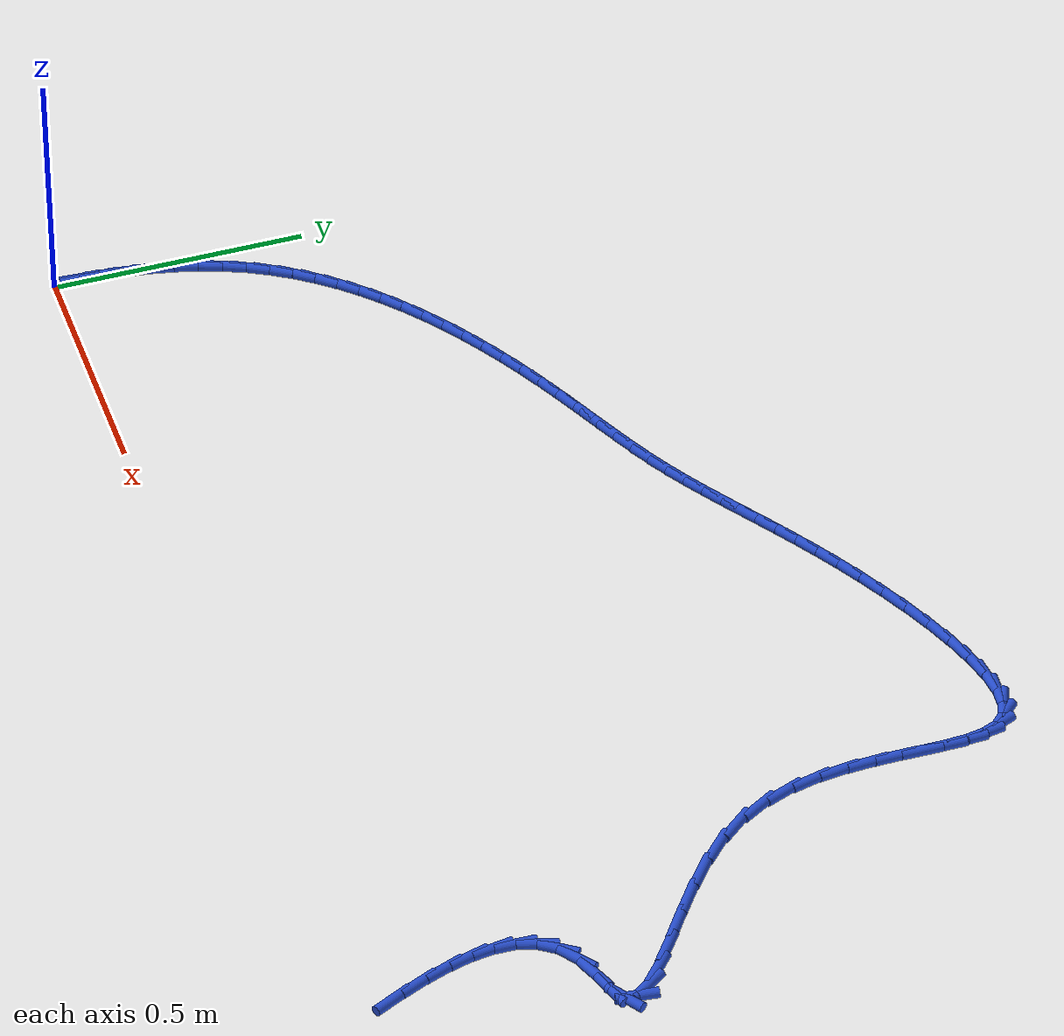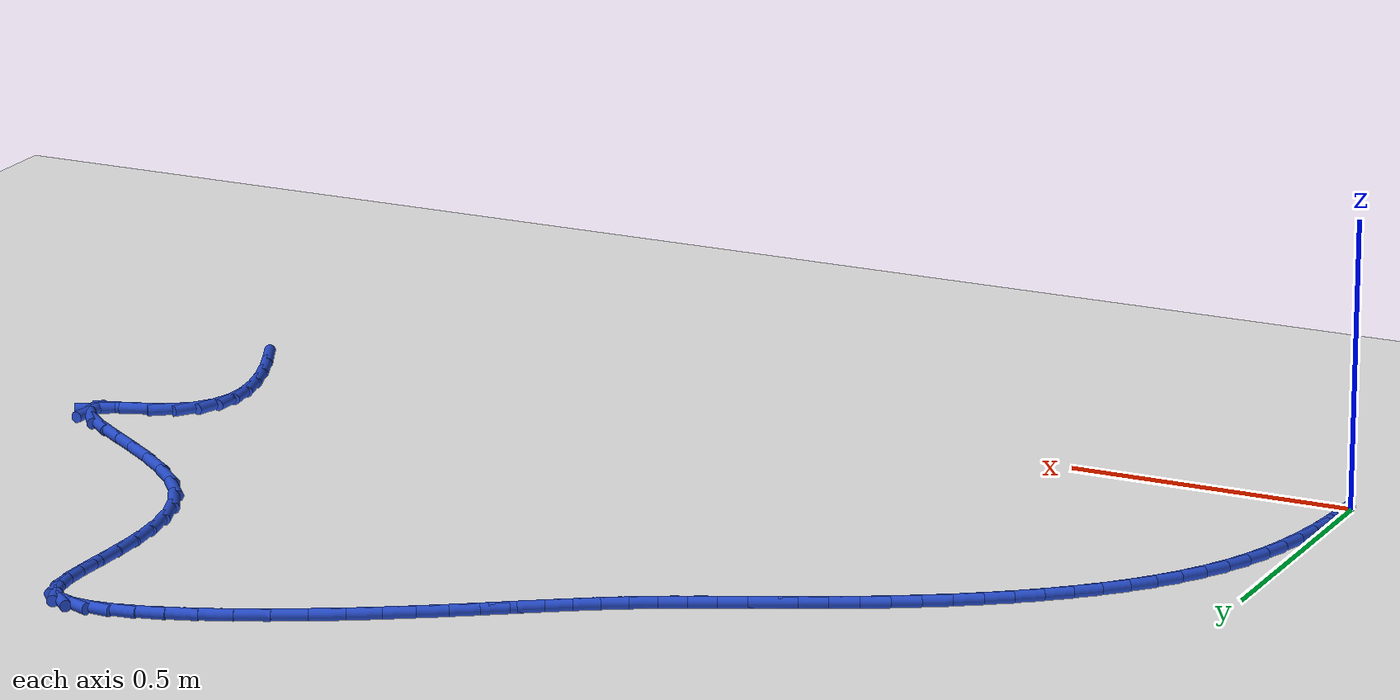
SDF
<sdf version="1.6">
 <world name="default">
  <model name="ground_plane">
   <static>1</static>
   <link name="link">
    <collision name="collision">
     <geometry><plane><normal>0 0 1</normal><size>100 100</size></plane></geometry>
     <surface><friction><ode><mu>100</mu><mu2>50</mu2></ode></friction></surface>
    </collision>
    <visual name="visual">
     <cast_shadows>0</cast_shadows>
     <geometry><plane><normal>0 0 1</normal><size>100 100</size></plane></geometry>
     <material>
      <script><uri>file://media/materials/scripts/gazebo.material</uri><name>Gazebo/WhiteGlow</name></script>
     </material>
    </visual>
   </link>
  </model>
  <model name="line">
   <link name="link_1">
    <pose>0.0007842515850210458 0.04907750059657804 0.01 0 1.57 1.5136349057976526</pose>
    <collision name="collision">
     <geometry><cylinder><radius>0.01</radius><length>0.08</length></cylinder></geometry>
    </collision>
    <visual name="visual">
     <material>
      <script><name>Gazebo/Blue</name><uri>file://media/materials/scripts/gazebo.material</uri></script>
     </material>
     <geometry><cylinder><radius>0.01</radius><length>0.08</length></cylinder></geometry>
    </visual>
   </link>
   <link name="link_2">
    <pose>0.003576023252500154 0.09786443273712372 0.01 0 1.57 1.468387888100045</pose>
    <collision name="collision">
     <geometry><cylinder><radius>0.01</radius><length>0.08</length></cylinder></geometry>
    </collision>
    <visual name="visual">
     <material>
      <script><name>Gazebo/Blue</name><uri>file://media/materials/scripts/gazebo.material</uri></script>
     </material>
     <geometry><cylinder><radius>0.01</radius><length>0.08</length></cylinder></geometry>
    </visual>
   </link>
   <link name="link_3">
    <pose>0.008539704421732526 0.14616432779783262 0.01 0 1.57 1.4186726149800124</pose>
    <collision name="collision">
     <geometry><cylinder><radius>0.01</radius><length>0.08</length></cylinder></geometry>
    </collision>
    <visual name="visual">
     <material>
      <script><name>Gazebo/Blue</name><uri>file://media/materials/scripts/gazebo.material</uri></script>
     </material>
     <geometry><cylinder><radius>0.01</radius><length>0.08</length></cylinder></geometry>
    </visual>
   </link>
   <link name="link_4">
    <pose>0.015839684512013324 0.19378071715490022 0.01 0 1.57 1.3640906138248614</pose>
    <collision name="collision">
     <geometry><cylinder><radius>0.01</radius><length>0.08</length></cylinder></geometry>
    </collision>
    <visual name="visual">
     <material>
      <script><name>Gazebo/Blue</name><uri>file://media/materials/scripts/gazebo.material</uri></script>
     </material>
     <geometry><cylinder><radius>0.01</radius><length>0.08</length></cylinder></geometry>
    </visual>
   </link>
   <link name="link_5">
    <pose>0.02564035294263773 0.240517132184522 0.01 0 1.57 1.30427875366741</pose>
    <collision name="collision">
     <geometry><cylinder><radius>0.01</radius><length>0.08</length></cylinder></geometry>
    </collision>
    <visual name="visual">
     <material>
      <script><name>Gazebo/Blue</name><uri>file://media/materials/scripts/gazebo.material</uri></script>
     </material>
     <geometry><cylinder><radius>0.01</radius><length>0.08</length></cylinder></geometry>
    </visual>
   </link>
   <link name="link_6">
    <pose>0.03810609913290093 0.2861771042628936 0.01 0 1.57 1.2389517060004942</pose>
    <collision name="collision">
     <geometry><cylinder><radius>0.01</radius><length>0.08</length></cylinder></geometry>
    </collision>
    <visual name="visual">
     <material>
      <script><name>Gazebo/Blue</name><uri>file://media/materials/scripts/gazebo.material</uri></script>
     </material>
     <geometry><cylinder><radius>0.01</radius><length>0.08</length></cylinder></geometry>
    </visual>
   </link>
   <link name="link_7">
    <pose>0.05340131250209809 0.33056416476621037 0.01 0 1.57 1.1679579282214492</pose>
    <collision name="collision">
     <geometry><cylinder><radius>0.01</radius><length>0.08</length></cylinder></geometry>
    </collision>
    <visual name="visual">
     <material>
      <script><name>Gazebo/Blue</name><uri>file://media/materials/scripts/gazebo.material</uri></script>
     </material>
     <geometry><cylinder><radius>0.01</radius><length>0.08</length></cylinder></geometry>
    </visual>
   </link>
   <link name="link_8">
    <pose>0.07169038246952437 0.37348184507066806 0.01 0 1.57 1.0921105278431147</pose>
    <collision name="collision">
     <geometry><cylinder><radius>0.01</radius><length>0.08</length></cylinder></geometry>
    </collision>
    <visual name="visual">
     <material>
      <script><name>Gazebo/Blue</name><uri>file://media/materials/scripts/gazebo.material</uri></script>
     </material>
     <geometry><cylinder><radius>0.01</radius><length>0.08</length></cylinder></geometry>
    </visual>
   </link>
   <link name="link_9">
    <pose>0.09310748259988162 0.4147525787857607 0.01 0 1.57 1.0177618828842996</pose>
    <collision name="collision">
     <geometry><cylinder><radius>0.01</radius><length>0.08</length></cylinder></geometry>
    </collision>
    <visual name="visual">
     <material>
      <script><name>Gazebo/Blue</name><uri>file://media/materials/scripts/gazebo.material</uri></script>
     </material>
     <geometry><cylinder><radius>0.01</radius><length>0.08</length></cylinder></geometry>
    </visual>
   </link>
   <link name="link_10">
    <pose>0.1175489916067212 0.4543475576419809 0.01 0 1.57 0.948197487847134</pose>
    <collision name="collision">
     <geometry><cylinder><radius>0.01</radius><length>0.08</length></cylinder></geometry>
    </collision>
    <visual name="visual">
     <material>
      <script><name>Gazebo/Blue</name><uri>file://media/materials/scripts/gazebo.material</uri></script>
     </material>
     <geometry><cylinder><radius>0.01</radius><length>0.08</length></cylinder></geometry>
    </visual>
   </link>
   <link name="link_11">
    <pose>0.14479876541814232 0.49230836462536093 0.01 0 1.57 0.8836673601684549</pose>
    <collision name="collision">
     <geometry><cylinder><radius>0.01</radius><length>0.08</length></cylinder></geometry>
    </collision>
    <visual name="visual">
     <material>
      <script><name>Gazebo/Blue</name><uri>file://media/materials/scripts/gazebo.material</uri></script>
     </material>
     <geometry><cylinder><radius>0.01</radius><length>0.08</length></cylinder></geometry>
    </visual>
   </link>
   <link name="link_12">
    <pose>0.17463998865264915 0.5286770026753236 0.01 0 1.57 0.8242037764306432</pose>
    <collision name="collision">
     <geometry><cylinder><radius>0.01</radius><length>0.08</length></cylinder></geometry>
    </collision>
    <visual name="visual">
     <material>
      <script><name>Gazebo/Blue</name><uri>file://media/materials/scripts/gazebo.material</uri></script>
     </material>
     <geometry><cylinder><radius>0.01</radius><length>0.08</length></cylinder></geometry>
    </visual>
   </link>
   <link name="link_13">
    <pose>0.20685584592874584 0.5634954747312914 0.01 0 1.57 0.7696886944714623</pose>
    <collision name="collision">
     <geometry><cylinder><radius>0.01</radius><length>0.08</length></cylinder></geometry>
    </collision>
    <visual name="visual">
     <material>
      <script><name>Gazebo/Blue</name><uri>file://media/materials/scripts/gazebo.material</uri></script>
     </material>
     <geometry><cylinder><radius>0.01</radius><length>0.08</length></cylinder></geometry>
    </visual>
   </link>
   <link name="link_14">
    <pose>0.2412295218649367 0.5968057837326871 0.01 0 1.57 0.7199020837492931</pose>
    <collision name="collision">
     <geometry><cylinder><radius>0.01</radius><length>0.08</length></cylinder></geometry>
    </collision>
    <visual name="visual">
     <material>
      <script><name>Gazebo/Blue</name><uri>file://media/materials/scripts/gazebo.material</uri></script>
     </material>
     <geometry><cylinder><radius>0.01</radius><length>0.08</length></cylinder></geometry>
    </visual>
   </link>
   <link name="link_15">
    <pose>0.2775442010797258 0.6286499326189332 0.01 0 1.57 0.6745629541881316</pose>
    <collision name="collision">
     <geometry><cylinder><radius>0.01</radius><length>0.08</length></cylinder></geometry>
    </collision>
    <visual name="visual">
     <material>
      <script><name>Gazebo/Blue</name><uri>file://media/materials/scripts/gazebo.material</uri></script>
     </material>
     <geometry><cylinder><radius>0.01</radius><length>0.08</length></cylinder></geometry>
    </visual>
   </link>
   <link name="link_16">
    <pose>0.3155830681916175 0.6590699243294528 0.01 0 1.57 0.6333612831008195</pose>
    <collision name="collision">
     <geometry><cylinder><radius>0.01</radius><length>0.08</length></cylinder></geometry>
    </collision>
    <visual name="visual">
     <material>
      <script><name>Gazebo/Blue</name><uri>file://media/materials/scripts/gazebo.material</uri></script>
     </material>
     <geometry><cylinder><radius>0.01</radius><length>0.08</length></cylinder></geometry>
    </visual>
   </link>
   <link name="link_17">
    <pose>0.3551293078191161 0.6881077618036684 0.01 0 1.57 0.5959811809001965</pose>
    <collision name="collision">
     <geometry><cylinder><radius>0.01</radius><length>0.08</length></cylinder></geometry>
    </collision>
    <visual name="visual">
     <material>
      <script><name>Gazebo/Blue</name><uri>file://media/materials/scripts/gazebo.material</uri></script>
     </material>
     <geometry><cylinder><radius>0.01</radius><length>0.08</length></cylinder></geometry>
    </visual>
   </link>
   <link name="link_18">
    <pose>0.39596610458072545 0.7158054479810023 0.01 0 1.57 0.5621166843402141</pose>
    <collision name="collision">
     <geometry><cylinder><radius>0.01</radius><length>0.08</length></cylinder></geometry>
    </collision>
    <visual name="visual">
     <material>
      <script><name>Gazebo/Blue</name><uri>file://media/materials/scripts/gazebo.material</uri></script>
     </material>
     <geometry><cylinder><radius>0.01</radius><length>0.08</length></cylinder></geometry>
    </visual>
   </link>
   <link name="link_19">
    <pose>0.43787664309495017 0.7422049858008779 0.01 0 1.57 0.5314818775183597</pose>
    <collision name="collision">
     <geometry><cylinder><radius>0.01</radius><length>0.08</length></cylinder></geometry>
    </collision>
    <visual name="visual">
     <material>
      <script><name>Gazebo/Blue</name><uri>file://media/materials/scripts/gazebo.material</uri></script>
     </material>
     <geometry><cylinder><radius>0.01</radius><length>0.08</length></cylinder></geometry>
    </visual>
   </link>
   <link name="link_20">
    <pose>0.480644107980294 0.7673483782027171 0.01 0 1.57 0.5038169510047724</pose>
    <collision name="collision">
     <geometry><cylinder><radius>0.01</radius><length>0.08</length></cylinder></geometry>
    </collision>
    <visual name="visual">
     <material>
      <script><name>Gazebo/Blue</name><uri>file://media/materials/scripts/gazebo.material</uri></script>
     </material>
     <geometry><cylinder><radius>0.01</radius><length>0.08</length></cylinder></geometry>
    </visual>
   </link>
   <link name="link_21">
    <pose>0.5240516838552616 0.791277628125943 0.01 0 1.57 0.4788915536792407</pose>
    <collision name="collision">
     <geometry><cylinder><radius>0.01</radius><length>0.08</length></cylinder></geometry>
    </collision>
    <visual name="visual">
     <material>
      <script><name>Gazebo/Blue</name><uri>file://media/materials/scripts/gazebo.material</uri></script>
     </material>
     <geometry><cylinder><radius>0.01</radius><length>0.08</length></cylinder></geometry>
    </visual>
   </link>
   <link name="link_22">
    <pose>0.5678825553383569 0.8140347385099787 0.01 0 1.57 0.4570493568227514</pose>
    <collision name="collision">
     <geometry><cylinder><radius>0.01</radius><length>0.08</length></cylinder></geometry>
    </collision>
    <visual name="visual">
     <material>
      <script><name>Gazebo/Blue</name><uri>file://media/materials/scripts/gazebo.material</uri></script>
     </material>
     <geometry><cylinder><radius>0.01</radius><length>0.08</length></cylinder></geometry>
    </visual>
   </link>
   <link name="link_23">
    <pose>0.6119143527583014 0.8356886600461111 0.01 0 1.57 0.4420971581341277</pose>
    <collision name="collision">
     <geometry><cylinder><radius>0.01</radius><length>0.08</length></cylinder></geometry>
    </collision>
    <visual name="visual">
     <material>
      <script><name>Gazebo/Blue</name><uri>file://media/materials/scripts/gazebo.material</uri></script>
     </material>
     <geometry><cylinder><radius>0.01</radius><length>0.08</length></cylinder></geometry>
    </visual>
   </link>
   <link name="link_24">
    <pose>0.6558848197423763 0.856501861764612 0.01 0 1.57 0.43585741994843274</pose>
    <collision name="collision">
     <geometry><cylinder><radius>0.01</radius><length>0.08</length></cylinder></geometry>
    </collision>
    <visual name="visual">
     <material>
      <script><name>Gazebo/Blue</name><uri>file://media/materials/scripts/gazebo.material</uri></script>
     </material>
     <geometry><cylinder><radius>0.01</radius><length>0.08</length></cylinder></geometry>
    </visual>
   </link>
   <link name="link_25">
    <pose>0.6995142677260668 0.8768213884736384 0.01 0 1.57 0.43858317244320516</pose>
    <collision name="collision">
     <geometry><cylinder><radius>0.01</radius><length>0.08</length></cylinder></geometry>
    </collision>
    <visual name="visual">
     <material>
      <script><name>Gazebo/Blue</name><uri>file://media/materials/scripts/gazebo.material</uri></script>
     </material>
     <geometry><cylinder><radius>0.01</radius><length>0.08</length></cylinder></geometry>
    </visual>
   </link>
   <link name="link_26">
    <pose>0.7425229350188614 0.8969946397668027 0.01 0 1.57 0.4506512488615498</pose>
    <collision name="collision">
     <geometry><cylinder><radius>0.01</radius><length>0.08</length></cylinder></geometry>
    </collision>
    <visual name="visual">
     <material>
      <script><name>Gazebo/Blue</name><uri>file://media/materials/scripts/gazebo.material</uri></script>
     </material>
     <geometry><cylinder><radius>0.01</radius><length>0.08</length></cylinder></geometry>
    </visual>
   </link>
   <link name="link_27">
    <pose>0.7846310599302466 0.9173690152377156 0.01 0 1.57 0.4725789795757197</pose>
    <collision name="collision">
     <geometry><cylinder><radius>0.01</radius><length>0.08</length></cylinder></geometry>
    </collision>
    <visual name="visual">
     <material>
      <script><name>Gazebo/Blue</name><uri>file://media/materials/scripts/gazebo.material</uri></script>
     </material>
     <geometry><cylinder><radius>0.01</radius><length>0.08</length></cylinder></geometry>
    </visual>
   </link>
   <link name="link_28">
    <pose>0.8255588807697106 0.9382919144799886 0.01 0 1.57 0.5044726837128017</pose>
    <collision name="collision">
     <geometry><cylinder><radius>0.01</radius><length>0.08</length></cylinder></geometry>
    </collision>
    <visual name="visual">
     <material>
      <script><name>Gazebo/Blue</name><uri>file://media/materials/scripts/gazebo.material</uri></script>
     </material>
     <geometry><cylinder><radius>0.01</radius><length>0.08</length></cylinder></geometry>
    </visual>
   </link>
   <link name="link_29">
    <pose>0.8650518140848992 0.9600969224044723 0.01 0 1.57 0.5377605878193324</pose>
    <collision name="collision">
     <geometry><cylinder><radius>0.01</radius><length>0.08</length></cylinder></geometry>
    </collision>
    <visual name="visual">
     <material>
      <script><name>Gazebo/Blue</name><uri>file://media/materials/scripts/gazebo.material</uri></script>
     </material>
     <geometry><cylinder><radius>0.01</radius><length>0.08</length></cylinder></geometry>
    </visual>
   </link>
   <link name="link_30">
    <pose>0.9032701948146044 0.9828899683605195 0.01 0 1.57 0.5642962442708688</pose>
    <collision name="collision">
     <geometry><cylinder><radius>0.01</radius><length>0.08</length></cylinder></geometry>
    </collision>
    <visual name="visual">
     <material>
      <script><name>Gazebo/Blue</name><uri>file://media/materials/scripts/gazebo.material</uri></script>
     </material>
     <geometry><cylinder><radius>0.01</radius><length>0.08</length></cylinder></geometry>
    </visual>
   </link>
   <link name="link_31">
    <pose>0.9407144890048875 1.0065903600874022 0.01 0 1.57 0.5830407878742155</pose>
    <collision name="collision">
     <geometry><cylinder><radius>0.01</radius><length>0.08</length></cylinder></geometry>
    </collision>
    <visual name="visual">
     <material>
      <script><name>Gazebo/Blue</name><uri>file://media/materials/scripts/gazebo.material</uri></script>
     </material>
     <geometry><cylinder><radius>0.01</radius><length>0.08</length></cylinder></geometry>
    </visual>
   </link>
   <link name="link_32">
    <pose>0.9778951980221898 1.0311118991898245 0.01 0 1.57 0.5936182516509998</pose>
    <collision name="collision">
     <geometry><cylinder><radius>0.01</radius><length>0.08</length></cylinder></geometry>
    </collision>
    <visual name="visual">
     <material>
      <script><name>Gazebo/Blue</name><uri>file://media/materials/scripts/gazebo.material</uri></script>
     </material>
     <geometry><cylinder><radius>0.01</radius><length>0.08</length></cylinder></geometry>
    </visual>
   </link>
   <link name="link_33">
    <pose>1.0153228232329512 1.0563683872724916 0.01 0 1.57 0.5960908205367755</pose>
    <collision name="collision">
     <geometry><cylinder><radius>0.01</radius><length>0.08</length></cylinder></geometry>
    </collision>
    <visual name="visual">
     <material>
      <script><name>Gazebo/Blue</name><uri>file://media/materials/scripts/gazebo.material</uri></script>
     </material>
     <geometry><cylinder><radius>0.01</radius><length>0.08</length></cylinder></geometry>
    </visual>
   </link>
   <link name="link_34">
    <pose>1.0535078660036135 1.0822736259401078 0.01 0 1.57 0.5909066540324872</pose>
    <collision name="collision">
     <geometry><cylinder><radius>0.01</radius><length>0.08</length></cylinder></geometry>
    </collision>
    <visual name="visual">
     <material>
      <script><name>Gazebo/Blue</name><uri>file://media/materials/scripts/gazebo.material</uri></script>
     </material>
     <geometry><cylinder><radius>0.01</radius><length>0.08</length></cylinder></geometry>
    </visual>
   </link>
   <link name="link_35">
    <pose>1.0929608277006175 1.108741416797379 0.01 0 1.57 0.5788221673163818</pose>
    <collision name="collision">
     <geometry><cylinder><radius>0.01</radius><length>0.08</length></cylinder></geometry>
    </collision>
    <visual name="visual">
     <material>
      <script><name>Gazebo/Blue</name><uri>file://media/materials/scripts/gazebo.material</uri></script>
     </material>
     <geometry><cylinder><radius>0.01</radius><length>0.08</length></cylinder></geometry>
    </visual>
   </link>
   <link name="link_36">
    <pose>1.1341922096904038 1.1356855614490087 0.01 0 1.57 0.5608121976195135</pose>
    <collision name="collision">
     <geometry><cylinder><radius>0.01</radius><length>0.08</length></cylinder></geometry>
    </collision>
    <visual name="visual">
     <material>
      <script><name>Gazebo/Blue</name><uri>file://media/materials/scripts/gazebo.material</uri></script>
     </material>
     <geometry><cylinder><radius>0.01</radius><length>0.08</length></cylinder></geometry>
    </visual>
   </link>
   <link name="link_37">
    <pose>1.1777125133394137 1.163019861499702 0.01 0 1.57 0.5379779724539197</pose>
    <collision name="collision">
     <geometry><cylinder><radius>0.01</radius><length>0.08</length></cylinder></geometry>
    </collision>
    <visual name="visual">
     <material>
      <script><name>Gazebo/Blue</name><uri>file://media/materials/scripts/gazebo.material</uri></script>
     </material>
     <geometry><cylinder><radius>0.01</radius><length>0.08</length></cylinder></geometry>
    </visual>
   </link>
   <link name="link_38">
    <pose>1.224032240014088 1.190658118554164 0.01 0 1.57 0.511590260849804</pose>
    <collision name="collision">
     <geometry><cylinder><radius>0.01</radius><length>0.08</length></cylinder></geometry>
    </collision>
    <visual name="visual">
     <material>
      <script><name>Gazebo/Blue</name><uri>file://media/materials/scripts/gazebo.material</uri></script>
     </material>
     <geometry><cylinder><radius>0.01</radius><length>0.08</length></cylinder></geometry>
    </visual>
   </link>
   <link name="link_39">
    <pose>1.2735407798031957 1.2184546090722577 0.01 0 1.57 0.4830601614089095</pose>
    <collision name="collision">
     <geometry><cylinder><radius>0.01</radius><length>0.08</length></cylinder></geometry>
    </collision>
    <visual name="visual">
     <material>
      <script><name>Gazebo/Blue</name><uri>file://media/materials/scripts/gazebo.material</uri></script>
     </material>
     <geometry><cylinder><radius>0.01</radius><length>0.08</length></cylinder></geometry>
    </visual>
   </link>
   <link name="link_40">
    <pose>1.325556849074618 1.2457373826459686 0.01 0 1.57 0.45127121917177127</pose>
    <collision name="collision">
     <geometry><cylinder><radius>0.01</radius><length>0.08</length></cylinder></geometry>
    </collision>
    <visual name="visual">
     <material>
      <script><name>Gazebo/Blue</name><uri>file://media/materials/scripts/gazebo.material</uri></script>
     </material>
     <geometry><cylinder><radius>0.01</radius><length>0.08</length></cylinder></geometry>
    </visual>
   </link>
   <link name="link_41">
    <pose>1.3788407832566785 1.27156004946789 0.01 0 1.57 0.41385574941185355</pose>
    <collision name="collision">
     <geometry><cylinder><radius>0.01</radius><length>0.08</length></cylinder></geometry>
    </collision>
    <visual name="visual">
     <material>
      <script><name>Gazebo/Blue</name><uri>file://media/materials/scripts/gazebo.material</uri></script>
     </material>
     <geometry><cylinder><radius>0.01</radius><length>0.08</length></cylinder></geometry>
    </visual>
   </link>
   <link name="link_42">
    <pose>1.43214808698638 1.2949738454384878 0.01 0 1.57 0.3675587106381804</pose>
    <collision name="collision">
     <geometry><cylinder><radius>0.01</radius><length>0.08</length></cylinder></geometry>
    </collision>
    <visual name="visual">
     <material>
      <script><name>Gazebo/Blue</name><uri>file://media/materials/scripts/gazebo.material</uri></script>
     </material>
     <geometry><cylinder><radius>0.01</radius><length>0.08</length></cylinder></geometry>
    </visual>
   </link>
   <link name="link_43">
    <pose>1.484234264900728 1.3150300064582292 0.01 0 1.57 0.3073462885753097</pose>
    <collision name="collision">
     <geometry><cylinder><radius>0.01</radius><length>0.08</length></cylinder></geometry>
    </collision>
    <visual name="visual">
     <material>
      <script><name>Gazebo/Blue</name><uri>file://media/materials/scripts/gazebo.material</uri></script>
     </material>
     <geometry><cylinder><radius>0.01</radius><length>0.08</length></cylinder></geometry>
    </visual>
   </link>
   <link name="link_44">
    <pose>1.533854821636727 1.330779768427581 0.01 0 1.57 0.2247273955039373</pose>
    <collision name="collision">
     <geometry><cylinder><radius>0.01</radius><length>0.08</length></cylinder></geometry>
    </collision>
    <visual name="visual">
     <material>
      <script><name>Gazebo/Blue</name><uri>file://media/materials/scripts/gazebo.material</uri></script>
     </material>
     <geometry><cylinder><radius>0.01</radius><length>0.08</length></cylinder></geometry>
    </visual>
   </link>
   <link name="link_45">
    <pose>1.57976526183138 1.3412743672470098 0.01 0 1.57 0.10438262588103439</pose>
    <collision name="collision">
     <geometry><cylinder><radius>0.01</radius><length>0.08</length></cylinder></geometry>
    </collision>
    <visual name="visual">
     <material>
      <script><name>Gazebo/Blue</name><uri>file://media/materials/scripts/gazebo.material</uri></script>
     </material>
     <geometry><cylinder><radius>0.01</radius><length>0.08</length></cylinder></geometry>
    </visual>
   </link>
   <link name="link_46">
    <pose>1.6207210901216926 1.3455650388169822 0.01 0 1.57 -0.08215899414609175</pose>
    <collision name="collision">
     <geometry><cylinder><radius>0.01</radius><length>0.08</length></cylinder></geometry>
    </collision>
    <visual name="visual">
     <material>
      <script><name>Gazebo/Blue</name><uri>file://media/materials/scripts/gazebo.material</uri></script>
     </material>
     <geometry><cylinder><radius>0.01</radius><length>0.08</length></cylinder></geometry>
    </visual>
   </link>
   <link name="link_47">
    <pose>1.6554778111446682 1.342703019037965 0.01 0 1.57 -0.3817123597840885</pose>
    <collision name="collision">
     <geometry><cylinder><radius>0.01</radius><length>0.08</length></cylinder></geometry>
    </collision>
    <visual name="visual">
     <material>
      <script><name>Gazebo/Blue</name><uri>file://media/materials/scripts/gazebo.material</uri></script>
     </material>
     <geometry><cylinder><radius>0.01</radius><length>0.08</length></cylinder></geometry>
    </visual>
   </link>
   <link name="link_48">
    <pose>1.6827909295373105 1.3317395438104245 0.01 0 1.57 -0.80663547609478</pose>
    <collision name="collision">
     <geometry><cylinder><radius>0.01</radius><length>0.08</length></cylinder></geometry>
    </collision>
    <visual name="visual">
     <material>
      <script><name>Gazebo/Blue</name><uri>file://media/materials/scripts/gazebo.material</uri></script>
     </material>
     <geometry><cylinder><radius>0.01</radius><length>0.08</length></cylinder></geometry>
    </visual>
   </link>
   <link name="link_49">
    <pose>1.7017529687783328 1.3119544968479397 0.01 0 1.57 -1.1778031978639705</pose>
    <collision name="collision">
     <geometry><cylinder><radius>0.01</radius><length>0.08</length></cylinder></geometry>
    </collision>
    <visual name="visual">
     <material>
      <script><name>Gazebo/Blue</name><uri>file://media/materials/scripts/gazebo.material</uri></script>
     </material>
     <geometry><cylinder><radius>0.01</radius><length>0.08</length></cylinder></geometry>
    </visual>
   </link>
   <link name="link_50">
    <pose>1.7133718825119197 1.2839272705689544 0.01 0 1.57 -1.403229055161632</pose>
    <collision name="collision">
     <geometry><cylinder><radius>0.01</radius><length>0.08</length></cylinder></geometry>
    </collision>
    <visual name="visual">
     <material>
      <script><name>Gazebo/Blue</name><uri>file://media/materials/scripts/gazebo.material</uri></script>
     </material>
     <geometry><cylinder><radius>0.01</radius><length>0.08</length></cylinder></geometry>
    </visual>
   </link>
   <link name="link_51">
    <pose>1.7193314168991185 1.2486957435712438 0.01 0 1.57 -1.5228912177226923</pose>
    <collision name="collision">
     <geometry><cylinder><radius>0.01</radius><length>0.08</length></cylinder></geometry>
    </collision>
    <visual name="visual">
     <material>
      <script><name>Gazebo/Blue</name><uri>file://media/materials/scripts/gazebo.material</uri></script>
     </material>
     <geometry><cylinder><radius>0.01</radius><length>0.08</length></cylinder></geometry>
    </visual>
   </link>
   <link name="link_52">
    <pose>1.721316083719696 1.2072983138806535 0.01 0 1.57 1.564225988293905</pose>
    <collision name="collision">
     <geometry><cylinder><radius>0.01</radius><length>0.08</length></cylinder></geometry>
    </collision>
    <visual name="visual">
     <material>
      <script><name>Gazebo/Blue</name><uri>file://media/materials/scripts/gazebo.material</uri></script>
     </material>
     <geometry><cylinder><radius>0.01</radius><length>0.08</length></cylinder></geometry>
    </visual>
   </link>
   <link name="link_53">
    <pose>1.7210103947534194 1.1607733795230275 0.01 0 1.57 1.5527887853068787</pose>
    <collision name="collision">
     <geometry><cylinder><radius>0.01</radius><length>0.08</length></cylinder></geometry>
    </collision>
    <visual name="visual">
     <material>
      <script><name>Gazebo/Blue</name><uri>file://media/materials/scripts/gazebo.material</uri></script>
     </material>
     <geometry><cylinder><radius>0.01</radius><length>0.08</length></cylinder></geometry>
    </visual>
   </link>
   <link name="link_54">
    <pose>1.7200988617800568 1.1101593385242112 0.01 0 1.57 -1.5676819125818602</pose>
    <collision name="collision">
     <geometry><cylinder><radius>0.01</radius><length>0.08</length></cylinder></geometry>
    </collision>
    <visual name="visual">
     <material>
      <script><name>Gazebo/Blue</name><uri>file://media/materials/scripts/gazebo.material</uri></script>
     </material>
     <geometry><cylinder><radius>0.01</radius><length>0.08</length></cylinder></geometry>
    </visual>
   </link>
   <link name="link_55">
    <pose>1.7202659965793734 1.056494588910048 0.01 0 1.57 -1.5182142903779752</pose>
    <collision name="collision">
     <geometry><cylinder><radius>0.01</radius><length>0.08</length></cylinder></geometry>
    </collision>
    <visual name="visual">
     <material>
      <script><name>Gazebo/Blue</name><uri>file://media/materials/scripts/gazebo.material</uri></script>
     </material>
     <geometry><cylinder><radius>0.01</radius><length>0.08</length></cylinder></geometry>
    </visual>
   </link>
   <link name="link_56">
    <pose>1.7231963109311381 1.0008175287063832 0.01 0 1.57 -1.4412890853291829</pose>
    <collision name="collision">
     <geometry><cylinder><radius>0.01</radius><length>0.08</length></cylinder></geometry>
    </collision>
    <visual name="visual">
     <material>
      <script><name>Gazebo/Blue</name><uri>file://media/materials/scripts/gazebo.material</uri></script>
     </material>
     <geometry><cylinder><radius>0.01</radius><length>0.08</length></cylinder></geometry>
    </visual>
   </link>
   <link name="link_57">
    <pose>1.730574316615117 0.9441665559390618 0.01 0 1.57 -1.336430509997396</pose>
    <collision name="collision">
     <geometry><cylinder><radius>0.01</radius><length>0.08</length></cylinder></geometry>
    </collision>
    <visual name="visual">
     <material>
      <script><name>Gazebo/Blue</name><uri>file://media/materials/scripts/gazebo.material</uri></script>
     </material>
     <geometry><cylinder><radius>0.01</radius><length>0.08</length></cylinder></geometry>
    </visual>
   </link>
   <link name="link_58">
    <pose>1.7440845254110777 0.8875800686339272 0.01 0 1.57 -1.203825424232179</pose>
    <collision name="collision">
     <geometry><cylinder><radius>0.01</radius><length>0.08</length></cylinder></geometry>
    </collision>
    <visual name="visual">
     <material>
      <script><name>Gazebo/Blue</name><uri>file://media/materials/scripts/gazebo.material</uri></script>
     </material>
     <geometry><cylinder><radius>0.01</radius><length>0.08</length></cylinder></geometry>
    </visual>
   </link>
   <link name="link_59">
    <pose>1.7654114490987878 0.8320964648168258 0.01 0 1.57 -1.0467625526400808</pose>
    <collision name="collision">
     <geometry><cylinder><radius>0.01</radius><length>0.08</length></cylinder></geometry>
    </collision>
    <visual name="visual">
     <material>
      <script><name>Gazebo/Blue</name><uri>file://media/materials/scripts/gazebo.material</uri></script>
     </material>
     <geometry><cylinder><radius>0.01</radius><length>0.08</length></cylinder></geometry>
    </visual>
   </link>
   <link name="link_60">
    <pose>1.7962395994580127 0.7787541425136009 0.01 0 1.57 -0.8804024752165751</pose>
    <collision name="collision">
     <geometry><cylinder><radius>0.01</radius><length>0.08</length></cylinder></geometry>
    </collision>
    <visual name="visual">
     <material>
      <script><name>Gazebo/Blue</name><uri>file://media/materials/scripts/gazebo.material</uri></script>
     </material>
     <geometry><cylinder><radius>0.01</radius><length>0.08</length></cylinder></geometry>
    </visual>
   </link>
   <link name="link_61">
    <pose>1.8377466581048083 0.7285033722472357 0.01 0 1.57 -0.7547351194921746</pose>
    <collision name="collision">
     <geometry><cylinder><radius>0.01</radius><length>0.08</length></cylinder></geometry>
    </collision>
    <visual name="visual">
     <material>
      <script><name>Gazebo/Blue</name><uri>file://media/materials/scripts/gazebo.material</uri></script>
     </material>
     <geometry><cylinder><radius>0.01</radius><length>0.08</length></cylinder></geometry>
    </visual>
   </link>
   <link name="link_62">
    <pose>1.8875400843740928 0.6816736351780781 0.01 0 1.57 -0.6750035557961598</pose>
    <collision name="collision">
     <geometry><cylinder><radius>0.01</radius><length>0.08</length></cylinder></geometry>
    </collision>
    <visual name="visual">
     <material>
      <script><name>Gazebo/Blue</name><uri>file://media/materials/scripts/gazebo.material</uri></script>
     </material>
     <geometry><cylinder><radius>0.01</radius><length>0.08</length></cylinder></geometry>
    </visual>
   </link>
   <link name="link_63">
    <pose>1.9416933619311179 0.6383276851584 0.01 0 1.57 -0.6300580881630947</pose>
    <collision name="collision">
     <geometry><cylinder><radius>0.01</radius><length>0.08</length></cylinder></geometry>
    </collision>
    <visual name="visual">
     <material>
      <script><name>Gazebo/Blue</name><uri>file://media/materials/scripts/gazebo.material</uri></script>
     </material>
     <geometry><cylinder><radius>0.01</radius><length>0.08</length></cylinder></geometry>
    </visual>
   </link>
   <link name="link_64">
    <pose>1.996274049443884 0.5985272458034269 0.01 0 1.57 -0.616487457971596</pose>
    <collision name="collision">
     <geometry><cylinder><radius>0.01</radius><length>0.08</length></cylinder></geometry>
    </collision>
    <visual name="visual">
     <material>
      <script><name>Gazebo/Blue</name><uri>file://media/materials/scripts/gazebo.material</uri></script>
     </material>
     <geometry><cylinder><radius>0.01</radius><length>0.08</length></cylinder></geometry>
    </visual>
   </link>
   <link name="link_65">
    <pose>2.047349705580397 0.5623340407283828 0.01 0 1.57 -0.6404967627111215</pose>
    <collision name="collision">
     <geometry><cylinder><radius>0.01</radius><length>0.08</length></cylinder></geometry>
    </collision>
    <visual name="visual">
     <material>
      <script><name>Gazebo/Blue</name><uri>file://media/materials/scripts/gazebo.material</uri></script>
     </material>
     <geometry><cylinder><radius>0.01</radius><length>0.08</length></cylinder></geometry>
    </visual>
   </link>
   <link name="link_66">
    <pose>2.0909878890086606 0.5298097935484924 0.01 0 1.57 -0.728554793761495</pose>
    <collision name="collision">
     <geometry><cylinder><radius>0.01</radius><length>0.08</length></cylinder></geometry>
    </collision>
    <visual name="visual">
     <material>
      <script><name>Gazebo/Blue</name><uri>file://media/materials/scripts/gazebo.material</uri></script>
     </material>
     <geometry><cylinder><radius>0.01</radius><length>0.08</length></cylinder></geometry>
    </visual>
   </link>
   <link name="link_67">
    <pose>2.123256158396677 0.5010162278789809 0.01 0 1.57 -0.9745741588385918</pose>
    <collision name="collision">
     <geometry><cylinder><radius>0.01</radius><length>0.08</length></cylinder></geometry>
    </collision>
    <visual name="visual">
     <material>
      <script><name>Gazebo/Blue</name><uri>file://media/materials/scripts/gazebo.material</uri></script>
     </material>
     <geometry><cylinder><radius>0.01</radius><length>0.08</length></cylinder></geometry>
    </visual>
   </link>
   <link name="link_68">
    <pose>2.1402220724124508 0.4760150673350723 0.01 0 1.57 1.463914358564587</pose>
    <collision name="collision">
     <geometry><cylinder><radius>0.01</radius><length>0.08</length></cylinder></geometry>
    </collision>
    <visual name="visual">
     <material>
      <script><name>Gazebo/Blue</name><uri>file://media/materials/scripts/gazebo.material</uri></script>
     </material>
     <geometry><cylinder><radius>0.01</radius><length>0.08</length></cylinder></geometry>
    </visual>
   </link>
   <link name="link_69">
    <pose>2.137953189723986 0.4548680355319918 0.01 0 1.57 0.5963319760171646</pose>
    <collision name="collision">
     <geometry><cylinder><radius>0.01</radius><length>0.08</length></cylinder></geometry>
    </collision>
    <visual name="visual">
     <material>
      <script><name>Gazebo/Blue</name><uri>file://media/materials/scripts/gazebo.material</uri></script>
     </material>
     <geometry><cylinder><radius>0.01</radius><length>0.08</length></cylinder></geometry>
    </visual>
   </link>
   <link name="link_70">
    <pose>2.112554015069137 0.4376279534257839 0.01 0 1.57 0.32237474702535807</pose>
    <collision name="collision">
     <geometry><cylinder><radius>0.01</radius><length>0.08</length></cylinder></geometry>
    </collision>
    <visual name="visual">
     <material>
      <script><name>Gazebo/Blue</name><uri>file://media/materials/scripts/gazebo.material</uri></script>
     </material>
     <geometry><cylinder><radius>0.01</radius><length>0.08</length></cylinder></geometry>
    </visual>
   </link>
   <link name="link_71">
    <pose>2.067487507717609 0.422574522042555 0.01 0 1.57 0.386333498994581</pose>
    <collision name="collision">
     <geometry><cylinder><radius>0.01</radius><length>0.08</length></cylinder></geometry>
    </collision>
    <visual name="visual">
     <material>
      <script><name>Gazebo/Blue</name><uri>file://media/materials/scripts/gazebo.material</uri></script>
     </material>
     <geometry><cylinder><radius>0.01</radius><length>0.08</length></cylinder></geometry>
    </visual>
   </link>
   <link name="link_72">
    <pose>2.022192600917155 0.4041496713660784 0.01 0 1.57 0.6477388447219717</pose>
    <collision name="collision">
     <geometry><cylinder><radius>0.01</radius><length>0.08</length></cylinder></geometry>
    </collision>
    <visual name="visual">
     <material>
      <script><name>Gazebo/Blue</name><uri>file://media/materials/scripts/gazebo.material</uri></script>
     </material>
     <geometry><cylinder><radius>0.01</radius><length>0.08</length></cylinder></geometry>
    </visual>
   </link>
   <link name="link_73">
    <pose>1.9889856657466016 0.3790238891228696 0.01 0 1.57 0.972353337092278</pose>
    <collision name="collision">
     <geometry><cylinder><radius>0.01</radius><length>0.08</length></cylinder></geometry>
    </collision>
    <visual name="visual">
     <material>
      <script><name>Gazebo/Blue</name><uri>file://media/materials/scripts/gazebo.material</uri></script>
     </material>
     <geometry><cylinder><radius>0.01</radius><length>0.08</length></cylinder></geometry>
    </visual>
   </link>
   <link name="link_74">
    <pose>1.9675628898797555 0.3476054444227995 0.01 0 1.57 1.2859220008578158</pose>
    <collision name="collision">
     <geometry><cylinder><radius>0.01</radius><length>0.08</length></cylinder></geometry>
    </collision>
    <visual name="visual">
     <material>
      <script><name>Gazebo/Blue</name><uri>file://media/materials/scripts/gazebo.material</uri></script>
     </material>
     <geometry><cylinder><radius>0.01</radius><length>0.08</length></cylinder></geometry>
    </visual>
   </link>
   <link name="link_75">
    <pose>1.9567174759545785 0.3105700478659384 0.01 0 1.57 1.5356757695892835</pose>
    <collision name="collision">
     <geometry><cylinder><radius>0.01</radius><length>0.08</length></cylinder></geometry>
    </collision>
    <visual name="visual">
     <material>
      <script><name>Gazebo/Blue</name><uri>file://media/materials/scripts/gazebo.material</uri></script>
     </material>
     <geometry><cylinder><radius>0.01</radius><length>0.08</length></cylinder></geometry>
    </visual>
   </link>
   <link name="link_76">
    <pose>1.9552426266090301 0.26859341005235626 0.01 0 1.57 -1.427142964782407</pose>
    <collision name="collision">
     <geometry><cylinder><radius>0.01</radius><length>0.08</length></cylinder></geometry>
    </collision>
    <visual name="visual">
     <material>
      <script><name>Gazebo/Blue</name><uri>file://media/materials/scripts/gazebo.material</uri></script>
     </material>
     <geometry><cylinder><radius>0.01</radius><length>0.08</length></cylinder></geometry>
    </visual>
   </link>
   <link name="link_77">
    <pose>1.9619315444810725 0.22235124158212408 0.01 0 1.57 -1.3035108197939442</pose>
    <collision name="collision">
     <geometry><cylinder><radius>0.01</radius><length>0.08</length></cylinder></geometry>
    </collision>
    <visual name="visual">
     <material>
      <script><name>Gazebo/Blue</name><uri>file://media/materials/scripts/gazebo.material</uri></script>
     </material>
     <geometry><cylinder><radius>0.01</radius><length>0.08</length></cylinder></geometry>
    </visual>
   </link>
   <link name="link_78">
    <pose>1.9755774322086668 0.1725192530553113 0.01 0 1.57 -1.21841892077493</pose>
    <collision name="collision">
     <geometry><cylinder><radius>0.01</radius><length>0.08</length></cylinder></geometry>
    </collision>
    <visual name="visual">
     <material>
      <script><name>Gazebo/Blue</name><uri>file://media/materials/scripts/gazebo.material</uri></script>
     </material>
     <geometry><cylinder><radius>0.01</radius><length>0.08</length></cylinder></geometry>
    </visual>
   </link>
   <link name="link_79">
    <pose>1.9949734924297733 0.11977315507198932 0.01 0 1.57 -1.1601623203596243</pose>
    <collision name="collision">
     <geometry><cylinder><radius>0.01</radius><length>0.08</length></cylinder></geometry>
    </collision>
    <visual name="visual">
     <material>
      <script><name>Gazebo/Blue</name><uri>file://media/materials/scripts/gazebo.material</uri></script>
     </material>
     <geometry><cylinder><radius>0.01</radius><length>0.08</length></cylinder></geometry>
    </visual>
   </link>
   <link name="link_80">
    <pose>2.018912927782353 0.06478865823222787 0.01 0 1.57 -1.1213612921584826</pose>
    <collision name="collision">
     <geometry><cylinder><radius>0.01</radius><length>0.08</length></cylinder></geometry>
    </collision>
    <visual name="visual">
     <material>
      <script><name>Gazebo/Blue</name><uri>file://media/materials/scripts/gazebo.material</uri></script>
     </material>
     <geometry><cylinder><radius>0.01</radius><length>0.08</length></cylinder></geometry>
    </visual>
   </link>
   <link name="link_161">
    <pose>0.0007343311972382964 0.04906605214105894 0.01 0 1.57 1.5558312675365933</pose>
    <collision name="collision">
     <geometry><cylinder><radius>0.01</radius><length>0.08</length></cylinder></geometry>
    </collision>
    <visual name="visual">
     <material>
      <script><name>Gazebo/Blue</name><uri>file://media/materials/scripts/gazebo.material</uri></script>
     </material>
     <geometry><cylinder><radius>0.01</radius><length>0.08</length></cylinder></geometry>
    </visual>
   </link>
  </model>
 </world>
</sdf>
